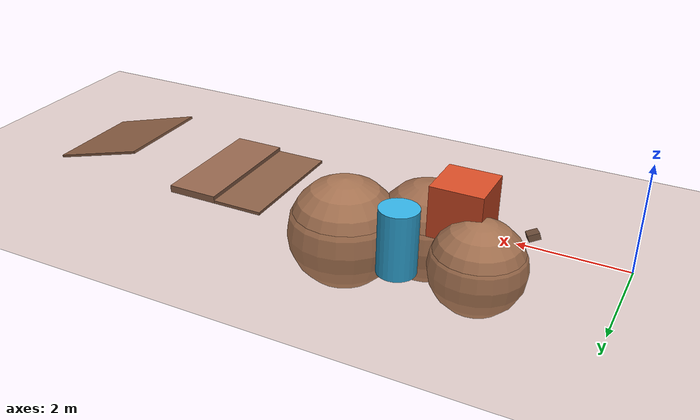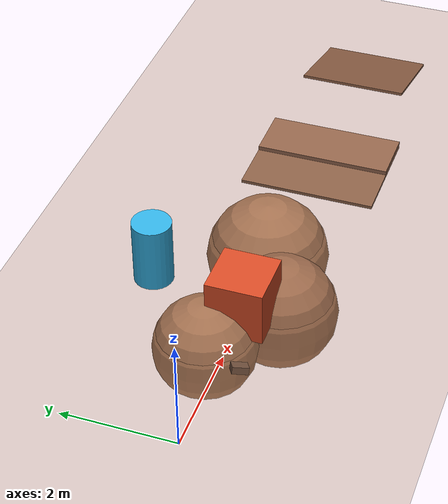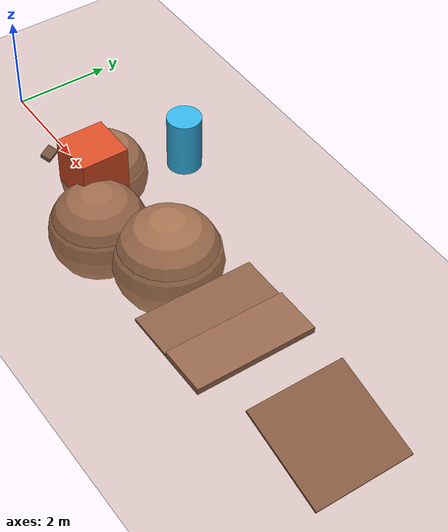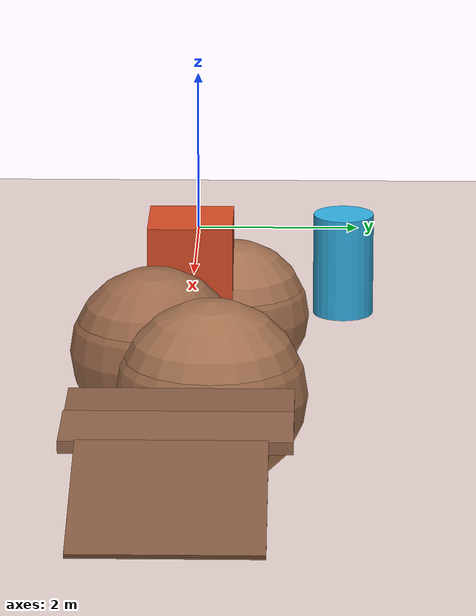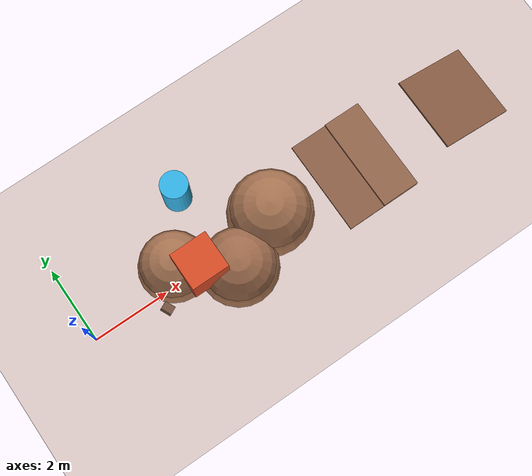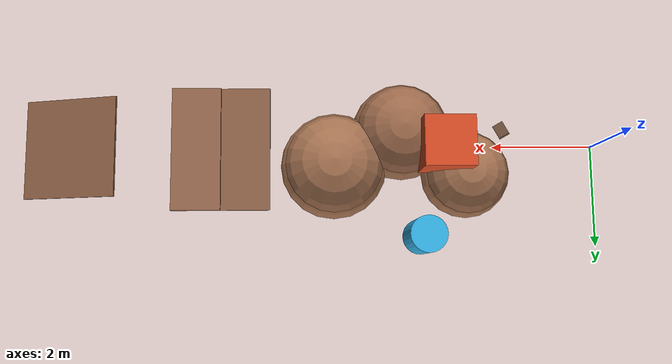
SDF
<?xml version="1.0" ?>
<sdf version="1.9">
  <world name="rough_terrain_world">

    <gravity>0 0 -9.8</gravity>

    <scene>
      <ambient>0.6 0.55 0.5 1.0</ambient>
      <background>0.75 0.65 0.55 1.0</background>
      <shadows>true</shadows>
    </scene>

    <!-- Directional Sun Light -->
    <light name="sun" type="directional">
      <cast_shadows>true</cast_shadows>
      <pose>0 0 15 0 0 0</pose>
      <diffuse>0.9 0.85 0.8 1</diffuse>
      <specular>0.2 0.2 0.2 1</specular>
      <direction>-0.5 0.2 -0.8</direction>
    </light>

    <!-- Flat Base Ground with Surface Friction -->
    <model name="ground_plane">
      <static>true</static>
      <link name="link">
        <collision name="collision">
          <geometry>
            <plane>
              <normal>0 0 1</normal>
              <size>100 100</size>
            </plane>
          </geometry>
          <surface>
            <friction>
              <ode>
                <mu>1.2</mu>
                <mu2>1.2</mu2>
              </ode>
            </friction>
          </surface>
        </collision>
        <visual name="visual">
          <geometry>
            <plane>
              <normal>0 0 1</normal>
              <size>100 100</size>
            </plane>
          </geometry>
          <material>
            <ambient>0.5 0.35 0.25 1</ambient>
            <diffuse>0.6 0.42 0.30 1</diffuse>
            <specular>0.05 0.05 0.05 1</specular>
          </material>
        </visual>
      </link>
    </model>

    <!-- Rolling Mounds / Uneven Dunes -->
    <model name="dune_field">
      <static>true</static>
      <link name="link">
        <!-- Mound 1 -->
        <collision name="c_mound_1">
          <pose>2.5 0.5 -0.35 0 0 0</pose>
          <geometry>
            <sphere><radius>0.9</radius></sphere>
          </geometry>
          <surface><friction><ode><mu>1.2</mu><mu2>1.2</mu2></ode></friction></surface>
        </collision>
        <visual name="v_mound_1">
          <pose>2.5 0.5 -0.35 0 0 0</pose>
          <geometry>
            <sphere><radius>0.9</radius></sphere>
          </geometry>
          <material><diffuse>0.65 0.45 0.32 1</diffuse></material>
        </visual>

        <!-- Mound 2 (Staggered for suspension roll) -->
        <collision name="c_mound_2">
          <pose>3.8 -0.4 -0.4 0 0 0</pose>
          <geometry>
            <sphere><radius>1.0</radius></sphere>
          </geometry>
          <surface><friction><ode><mu>1.2</mu><mu2>1.2</mu2></ode></friction></surface>
        </collision>
        <visual name="v_mound_2">
          <pose>3.8 -0.4 -0.4 0 0 0</pose>
          <geometry>
            <sphere><radius>1.0</radius></sphere>
          </geometry>
          <material><diffuse>0.62 0.42 0.30 1</diffuse></material>
        </visual>

        <!-- Mound 3 -->
        <collision name="c_mound_3">
          <pose>5.2 0.3 -0.45 0 0 0</pose>
          <geometry>
            <sphere><radius>1.1</radius></sphere>
          </geometry>
          <surface><friction><ode><mu>1.2</mu><mu2>1.2</mu2></ode></friction></surface>
        </collision>
        <visual name="v_mound_3">
          <pose>5.2 0.3 -0.45 0 0 0</pose>
          <geometry>
            <sphere><radius>1.1</radius></sphere>
          </geometry>
          <material><diffuse>0.65 0.45 0.32 1</diffuse></material>
        </visual>
      </link>
    </model>

    <!-- Rock Obstacle Field -->
    <model name="rock_field">
      <static>true</static>
      <link name="link">
        <!-- Rock 1 -->
        <collision name="c_rock_1">
          <pose>1.8 -0.35 0.05 0.2 0.3 0.5</pose>
          <geometry><box><size>0.22 0.28 0.12</size></box></geometry>
          <surface><friction><ode><mu>1.5</mu><mu2>1.5</mu2></ode></friction></surface>
        </collision>
        <visual name="v_rock_1">
          <pose>1.8 -0.35 0.05 0.2 0.3 0.5</pose>
          <geometry><box><size>0.22 0.28 0.12</size></box></geometry>
          <material><diffuse>0.45 0.32 0.24 1</diffuse></material>
        </visual>

        <!-- Rock 2 -->
        <collision name="c_rock_2">
          <pose>2.8 0.4 0.06 -0.1 0.4 1.1</pose>
          <geometry><box><size>0.3 0.25 0.14</size></box></geometry>
          <surface><friction><ode><mu>1.5</mu><mu2>1.5</mu2></ode></friction></surface>
        </collision>
        <visual name="v_rock_2">
          <pose>2.8 0.4 0.06 -0.1 0.4 1.1</pose>
          <geometry><box><size>0.3 0.25 0.14</size></box></geometry>
          <material><diffuse>0.42 0.30 0.22 1</diffuse></material>
        </visual>

        <!-- Rock 3 -->
        <collision name="c_rock_3">
          <pose>4.2 -0.25 0.08 0.3 -0.2 0.8</pose>
          <geometry><box><size>0.26 0.32 0.16</size></box></geometry>
          <surface><friction><ode><mu>1.5</mu><mu2>1.5</mu2></ode></friction></surface>
        </collision>
        <visual name="v_rock_3">
          <pose>4.2 -0.25 0.08 0.3 -0.2 0.8</pose>
          <geometry><box><size>0.26 0.32 0.16</size></box></geometry>
          <material><diffuse>0.48 0.35 0.26 1</diffuse></material>
        </visual>

        <!-- Small Rock Cluster -->
        <collision name="c_rock_4">
          <pose>3.4 0.1 0.04 0.1 0.1 0.2</pose>
          <geometry><cylinder><radius>0.12</radius><length>0.08</length></cylinder></geometry>
          <surface><friction><ode><mu>1.5</mu><mu2>1.5</mu2></ode></friction></surface>
        </collision>
        <visual name="v_rock_4">
          <pose>3.4 0.1 0.04 0.1 0.1 0.2</pose>
          <geometry><cylinder><radius>0.12</radius><length>0.08</length></cylinder></geometry>
          <material><diffuse>0.5 0.37 0.28 1</diffuse></material>
        </visual>
      </link>
    </model>

    <!-- Articulation Steps (Tests Rocker-Bogie Pitch & Compliance) -->
    <model name="suspension_test_steps">
      <static>true</static>
      <pose>7.0 0 0 0 0 0</pose>
      <link name="link">
        <!-- Step 1: 0.06m height -->
        <collision name="c_step_1">
          <pose>0 0 0.03 0 0 0</pose>
          <geometry><box><size>1.0 2.5 0.06</size></box></geometry>
          <surface><friction><ode><mu>1.5</mu><mu2>1.5</mu2></ode></friction></surface>
        </collision>
        <visual name="v_step_1">
          <pose>0 0 0.03 0 0 0</pose>
          <geometry><box><size>1.0 2.5 0.06</size></box></geometry>
          <material><diffuse>0.55 0.38 0.28 1</diffuse></material>
        </visual>

        <!-- Step 2: Additional 0.08m lift -->
        <collision name="c_step_2">
          <pose>1.0 0 0.07 0 0 0</pose>
          <geometry><box><size>1.0 2.5 0.14</size></box></geometry>
          <surface><friction><ode><mu>1.5</mu><mu2>1.5</mu2></ode></friction></surface>
        </collision>
        <visual name="v_step_2">
          <pose>1.0 0 0.07 0 0 0</pose>
          <geometry><box><size>1.0 2.5 0.14</size></box></geometry>
          <material><diffuse>0.58 0.40 0.30 1</diffuse></material>
        </visual>
      </link>
    </model>

    <!-- Sloped Incline Ramp (15 Degree Test Ramp) -->
    <model name="incline_ramp">
      <static>true</static>
      <pose>10.5 0 0.25 0 0.26 0</pose>
      <link name="link">
        <collision name="collision">
          <geometry><box><size>2.0 2.0 0.05</size></box></geometry>
          <surface><friction><ode><mu>1.8</mu><mu2>1.8</mu2></ode></friction></surface>
        </collision>
        <visual name="visual">
          <geometry><box><size>2.0 2.0 0.05</size></box></geometry>
          <material><diffuse>0.52 0.35 0.25 1</diffuse></material>
        </visual>
      </link>
    </model>

    <!-- Obstacles for LiDAR and PointCloud2 Detection -->
    <model name="box_obstacle">
      <static>true</static>
      <pose>3.0 0.0 0.5 0 0 0</pose>
      <link name="link">
        <collision name="collision">
          <geometry><box><size>1.0 1.0 1.0</size></box></geometry>
        </collision>
        <visual name="visual">
          <geometry><box><size>1.0 1.0 1.0</size></box></geometry>
          <material>
            <ambient>0.8 0.25 0.15 1</ambient>
            <diffuse>0.85 0.3 0.15 1</diffuse>
            <specular>0.2 0.2 0.2 1</specular>
          </material>
        </visual>
      </link>
    </model>

    <model name="cylinder_obstacle">
      <static>true</static>
      <pose>3.5 1.8 0.6 0 0 0</pose>
      <link name="link">
        <collision name="collision">
          <geometry><cylinder><radius>0.35</radius><length>1.2</length></cylinder></geometry>
        </collision>
        <visual name="visual">
          <geometry><cylinder><radius>0.35</radius><length>1.2</length></cylinder></geometry>
          <material>
            <ambient>0.15 0.6 0.8 1</ambient>
            <diffuse>0.2 0.7 0.9 1</diffuse>
            <specular>0.2 0.2 0.2 1</specular>
          </material>
        </visual>
      </link>
    </model>

    <!-- Required Gazebo Sim Plugins -->
    <plugin filename="ignition-gazebo-physics-system"
            name="ignition::gazebo::systems::Physics"/>

    <plugin filename="ignition-gazebo-user-commands-system"
            name="ignition::gazebo::systems::UserCommands"/>

    <plugin filename="ignition-gazebo-scene-broadcaster-system"
            name="ignition::gazebo::systems::SceneBroadcaster"/>

    <plugin filename="ignition-gazebo-sensors-system"
            name="ignition::gazebo::systems::Sensors">
      <render_engine>ogre2</render_engine>
    </plugin>

    <plugin filename="ignition-gazebo-imu-system"
            name="ignition::gazebo::systems::Imu"/>
  </world>
</sdf>
